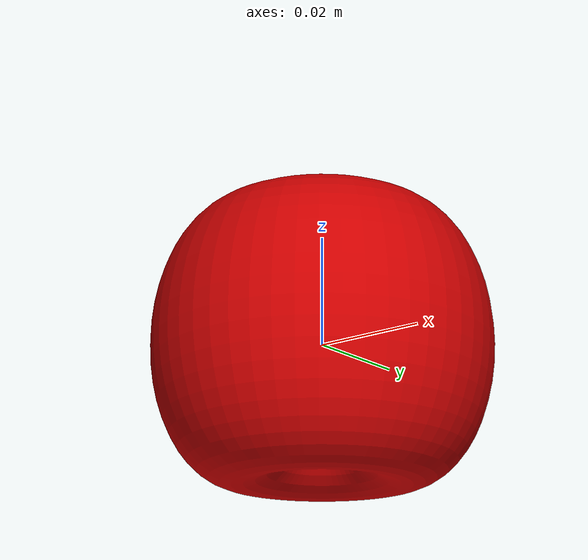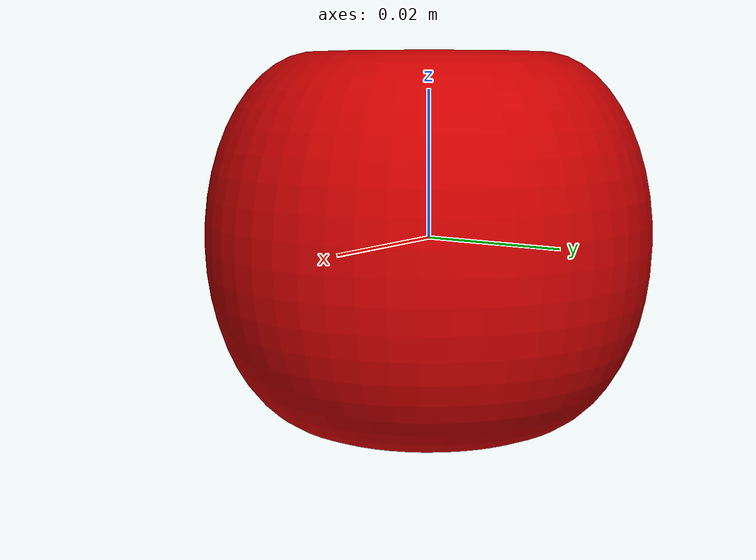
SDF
<sdf version='1.7'>
  <model name='apple_body'>
    <link name='base_link'>
      <inertial>
        <pose>0 -0 0 0 -0 0</pose>
        <mass>0.10428</mass>
        <inertia>
          <ixx>3.7428e-05</ixx>
          <ixy>-2.7676e-37</ixy>
          <ixz>3.5154e-26</ixz>
          <iyy>3.7428e-05</iyy>
          <iyz>2.8705e-10</iyz>
          <izz>4.1939e-05</izz>
        </inertia>
      </inertial>
      <collision name='base_link_collision'>
        <pose>0 0 0 0 -0 0</pose>
        <geometry>
          <mesh>
            <scale>1 1 1</scale>
            <uri>model://apple_body/meshes/base_link.STL</uri>
          </mesh>
        </geometry>
      </collision>
      <visual name='base_link_visual'>
        <pose>0 0 0 0 -0 0</pose>
        <geometry>
          <mesh>
            <scale>1 1 1</scale>
            <uri>model://apple_body/meshes/base_link.STL</uri>
          </mesh>
        </geometry>
        <material> <!-- Apple material -->
          <ambient>0.2 0 0 1</ambient>   <!-- Dim red, darker than diffuse -->
          <diffuse>0.8 0 0 1</diffuse>  <!-- Rich red for visible reflection -->
          <specular>0.3 0.3 0.3 0</specular>  <!-- Slight specular for a little shininess -->
          <emissive>0.1 0 0 1</emissive>  <!-- Very subtle red glow, not too bright -->
        </material> <!-- End Apple material -->
      </visual>
    </link>
  </model>
</sdf>
